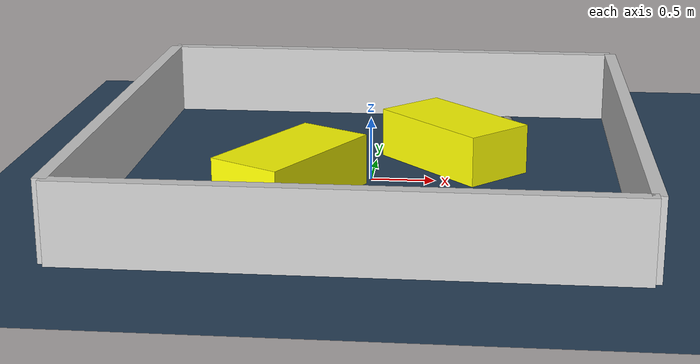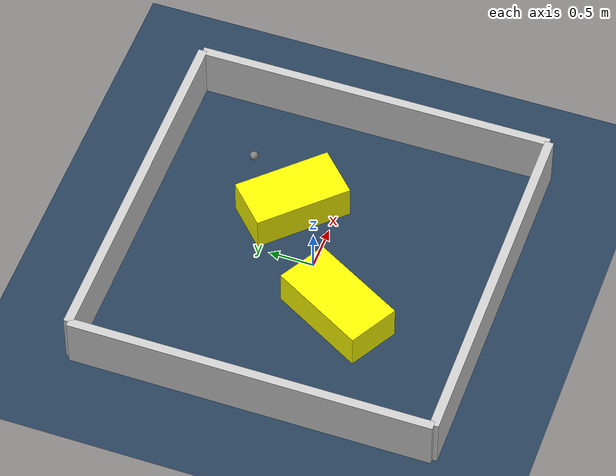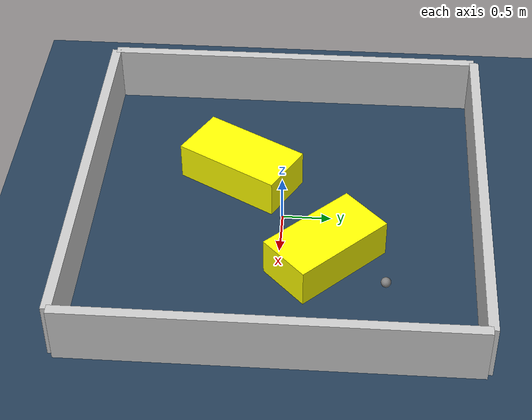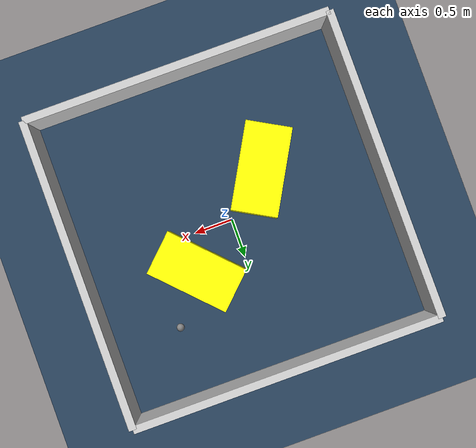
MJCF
<?xml version="1.0" ?>
<mujoco model="generated_environment">
  <option timestep="0.01" integrator="RK4" cone="elliptic"/>
  <default>
    <geom density="1"/>
  </default>
  <asset>
    <texture builtin="gradient" height="3072" rgb1="0.3 0.5 0.7" rgb2="0 0 0" type="skybox" width="512"/>
    <texture builtin="checker" height="300" mark="edge" markrgb="0.8 0.8 0.8" name="groundplane" rgb1="0.2 0.3 0.4" rgb2="0.1 0.2 0.3" type="2d" width="300"/>
    <material name="groundplane" reflectance="0.2" texrepeat="5 5" texture="groundplane" texuniform="true"/>
    <material name="robot" rgba="0.0 1.0 0.0 1"/>
  </asset>
  <worldbody>
    <light dir="0 0 -1" directional="true" pos="0 0 1.5"/>
    <geom condim="4" friction="1.0 0.005 0.001" material="groundplane" name="floor" size="0 0 0.05" type="plane"/>
    <body name="walls">
      <geom name="wall_1" condim="4" pos="-2.0 0.0 0.3" rgba="0.800000011920929 0.800000011920929 0.800000011920929 1.0" size="0.05 2.0 0.3" type="box"/>
      <geom name="wall_2" condim="4" pos="2.0 0.0 0.3" rgba="0.800000011920929 0.800000011920929 0.800000011920929 1.0" size="0.05 2.0 0.3" type="box"/>
      <geom name="wall_3" condim="4" pos="0.0 -2.0 0.3" rgba="0.800000011920929 0.800000011920929 0.800000011920929 1.0" size="2.0 0.05 0.3" type="box"/>
      <geom name="wall_4" condim="4" pos="0.0 2.0 0.3" rgba="0.800000011920929 0.800000011920929 0.800000011920929 1.0" size="2.0 0.05 0.3" type="box"/>
    </body>
    <body name="robot">
      <joint name="joint_x" type="slide" pos="0 0 0" axis="1 0 0"/>
      <joint name="joint_y" type="slide" pos="0 0 0" axis="0 1 0"/>
      <geom name="robot" type="sphere" pos="1.0754646314254428 1.0643334982179709 0.2" size="0.05" mass="5." friction="1.0 0.005 0.0001" condim="4"/>
      <site name="sensor_ball"/>
    </body>
    <body name="obstacle_1_movable">
      <geom name="obstacle_1_movable" condim="4" pos="-0.5678891356058267 -0.46837330883507267 0.2" euler="0 0 330.6151255025399" friction="1.0 0.005 0.001" rgba="1 1 0 1" size="0.29880511668346554 0.5729087099098382 0.2" type="box" mass="0.1"/>
      <joint type="free"/>
    </body>
    <body name="obstacle_2_movable">
      <geom name="obstacle_2_movable" condim="4" pos="0.6338675831690723 0.46289149648735184 0.2" euler="0 0 44.00596469489157" friction="1.0 0.005 0.001" rgba="1 1 0 1" size="0.29554032541935427 0.5482266664628286 0.2" type="box" mass="0.1"/>
      <joint type="free"/>
    </body>
  </worldbody>
  <actuator>
    <motor name="actuator_x" joint="joint_x" gear="1" ctrlrange="-1 1"/>
    <motor name="actuator_y" joint="joint_y" gear="1" ctrlrange="-1 1"/>
  </actuator>
</mujoco>
